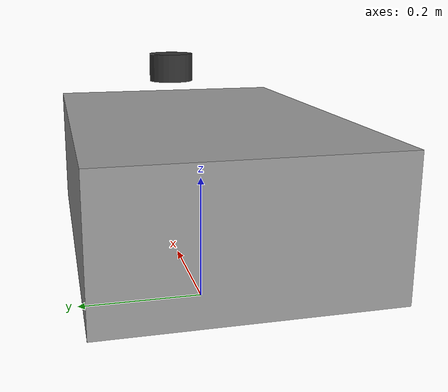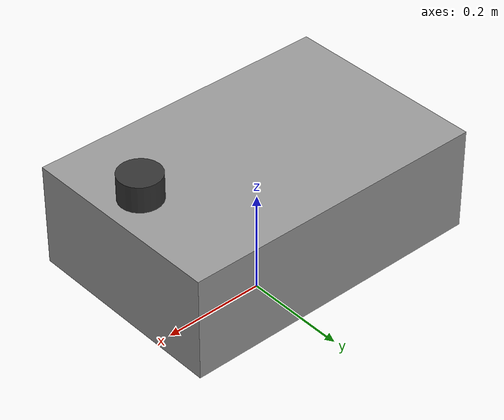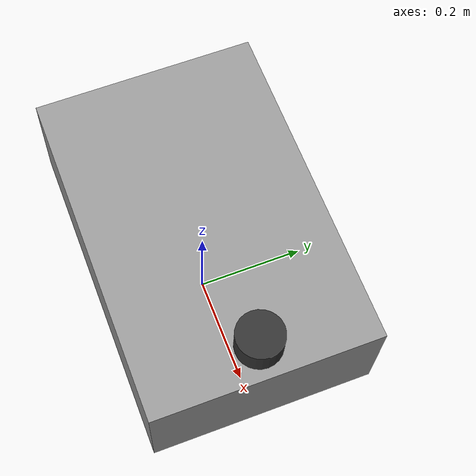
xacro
<?xml version="1.0" ?>
<!-- Abstract demo robot: a parameterized box chassis with a generic ray-sensor
     mount. Intentionally does not model any commercial robot. -->
<robot xmlns:xacro="http://www.ros.org/wiki/xacro" name="box_robot">

  <xacro:arg name="chassis_x" default="0.6"/>
  <xacro:arg name="chassis_y" default="0.4"/>
  <xacro:arg name="chassis_z" default="0.2"/>
  <xacro:arg name="lidar_xyz" default="0.25 0 0.15"/>
  <xacro:arg name="lidar_rpy" default="0 0 0"/>
  <xacro:arg name="lidar_samples" default="360"/>
  <xacro:arg name="lidar_range" default="15.0"/>

  <link name="base_footprint"/>

  <link name="base_link">
    <visual>
      <geometry>
        <box size="$(arg chassis_x) $(arg chassis_y) $(arg chassis_z)"/>
      </geometry>
      <material name="grey">
        <color rgba="0.6 0.6 0.6 1"/>
      </material>
    </visual>
    <collision>
      <geometry>
        <box size="$(arg chassis_x) $(arg chassis_y) $(arg chassis_z)"/>
      </geometry>
    </collision>
  </link>

  <joint name="base_joint" type="fixed">
    <parent link="base_footprint"/>
    <child link="base_link"/>
    <origin xyz="0 0 $(arg chassis_z)"/>
  </joint>

  <link name="lidar_link">
    <visual>
      <geometry>
        <cylinder radius="0.04" length="0.05"/>
      </geometry>
      <material name="dark">
        <color rgba="0.2 0.2 0.2 1"/>
      </material>
    </visual>
  </link>

  <joint name="lidar_joint" type="fixed">
    <parent link="base_link"/>
    <child link="lidar_link"/>
    <origin xyz="$(arg lidar_xyz)" rpy="$(arg lidar_rpy)"/>
  </joint>

  <gazebo reference="lidar_link">
    <sensor type="ray" name="lidar">
      <pose>0 0 0 0 0 0</pose>
      <visualize>false</visualize>
      <update_rate>10</update_rate>
      <ray>
        <scan>
          <horizontal>
            <samples>$(arg lidar_samples)</samples>
            <resolution>1</resolution>
            <min_angle>-3.14159</min_angle>
            <max_angle>3.14159</max_angle>
          </horizontal>
        </scan>
        <range>
          <min>0.1</min>
          <max>$(arg lidar_range)</max>
          <resolution>0.01</resolution>
        </range>
        <noise>
          <type>gaussian</type>
          <mean>0.0</mean>
          <stddev>0.01</stddev>
        </noise>
      </ray>
      <plugin name="lidar_plugin" filename="libgazebo_ros_ray_sensor.so">
        <ros>
          <remapping>~/out:=/demo/lidar/scan</remapping>
        </ros>
        <output_type>sensor_msgs/LaserScan</output_type>
        <frame_name>lidar_link</frame_name>
      </plugin>
    </sensor>
  </gazebo>

</robot>
